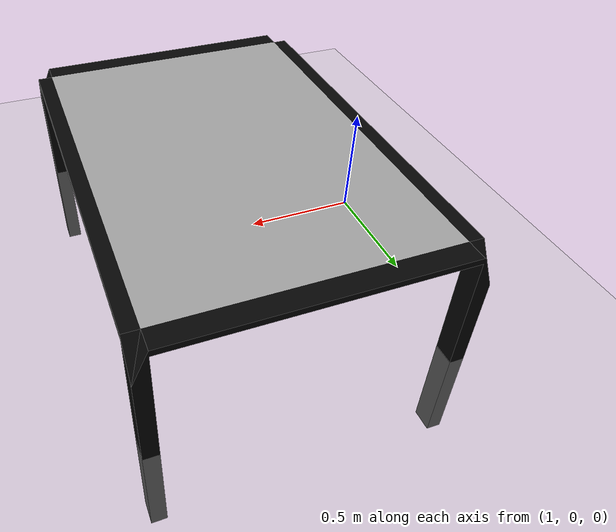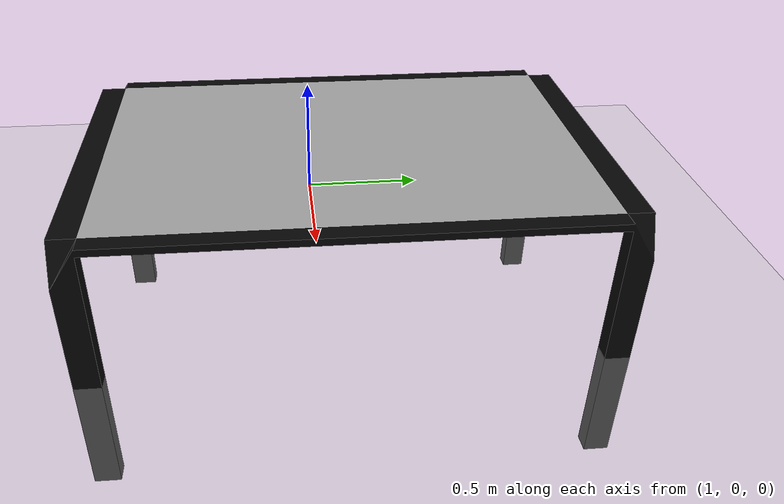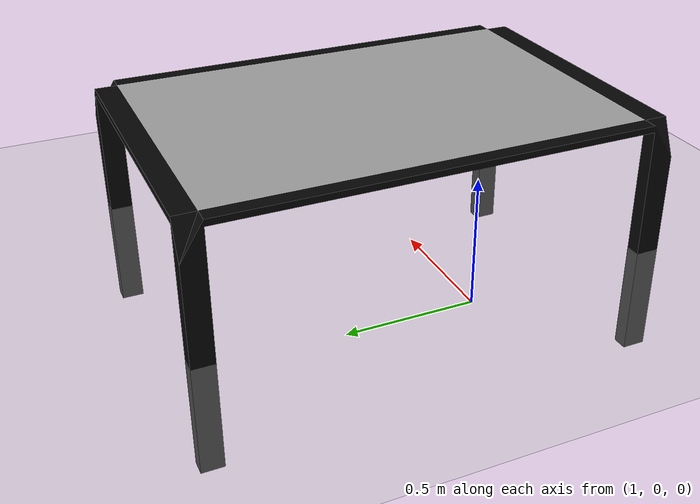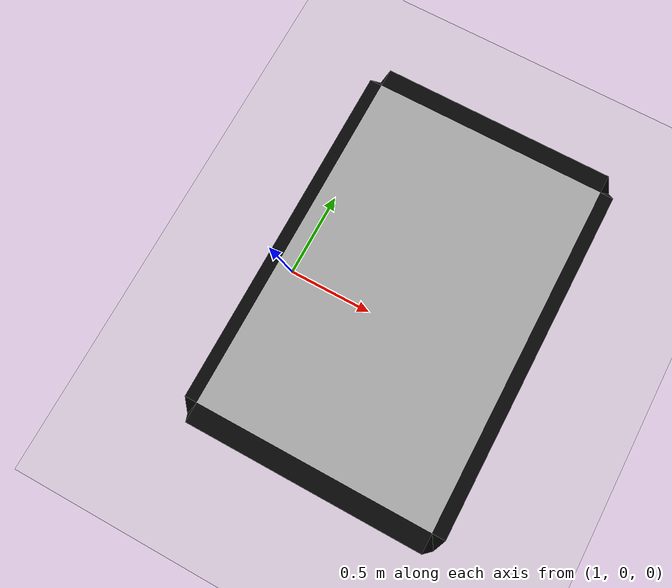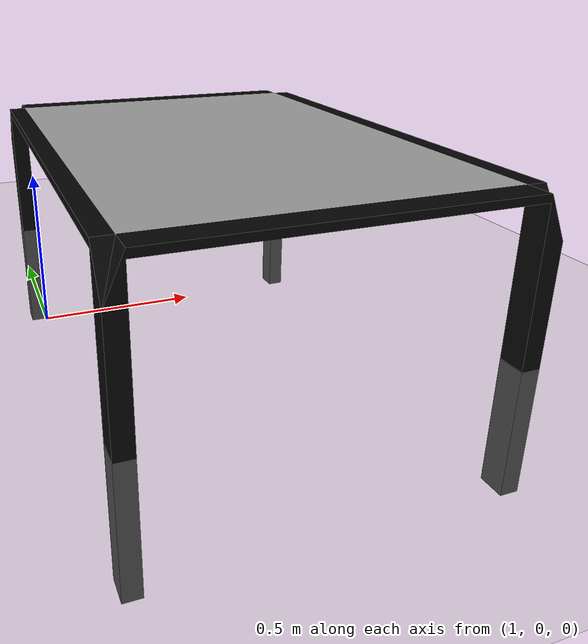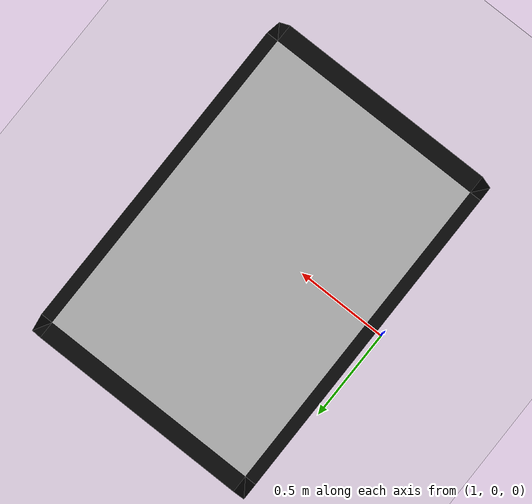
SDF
<?xml version="1.0" ?>
<sdf version="1.4">
  <world name="default">
    <physics type='ode'>
      <gravity>0 0 -9.81</gravity>
      <!-- max step size has to be a multiple of the desired task rate-->
      <max_step_size>0.001</max_step_size>
      <real_time_factor>1</real_time_factor>
    </physics>
    <!-- A global light source -->
    <include>
      <uri>model://sun</uri>
    </include>
    <!-- A ground plane -->
    <include>
      <uri>model://ground_plane</uri>
    </include>
    <include>
      <name>ramp</name>
      <uri>model://desk</uri>
      <pose>-2 -5 -0.45 0 0 0</pose>
    </include>
  </world>
</sdf>

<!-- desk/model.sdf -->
<sdf version="1.4">
	<model name="desk">
		<static>true</static>
		<link name="link">
			<pose>0 0 -0.62 0 0 0</pose>
			<collision name="collision">
				<geometry>
					<mesh>
						<uri>model://desk/mesh/desk.dae</uri>
						<scale>1.0 1.0 1.0</scale>
					</mesh>
				</geometry>
			</collision>
			<visual name="visual">
				<geometry>
					<mesh>
						<uri>model://desk/mesh/desk.dae</uri>
						<scale>1.0 1.0 1.0</scale>
					</mesh>
				</geometry>
			</visual>
		</link>
	</model>
</sdf>
